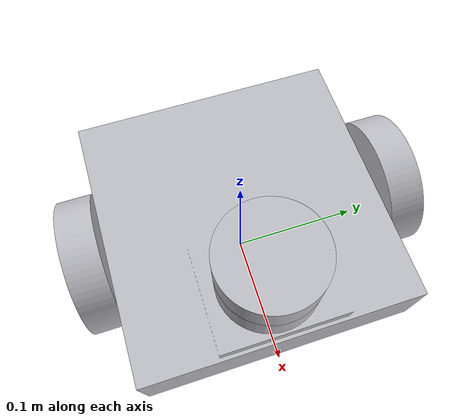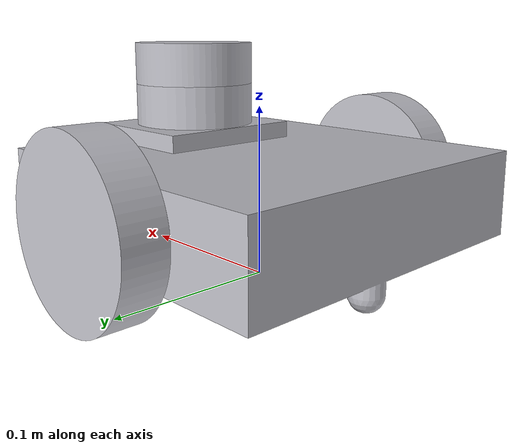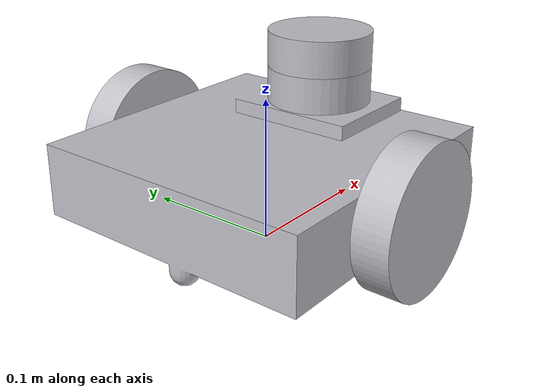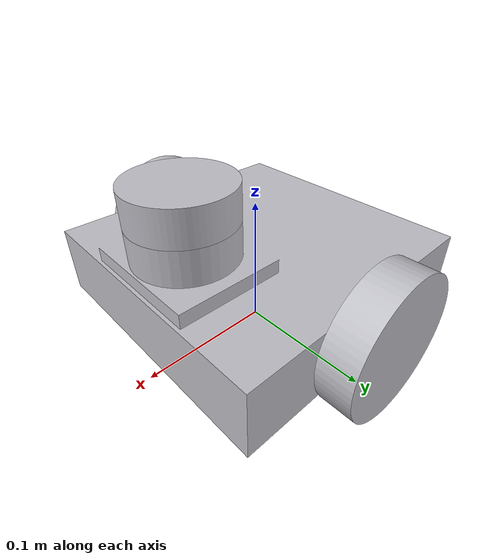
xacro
<?xml version="1.0" ?>
<robot name="myrobot" xmlns:xacro="http://www.ros.org/wiki/xacro">

<xacro:include filename="$(find myrobot_description)/urdf/materials.xacro" />
<xacro:include filename="$(find myrobot_description)/urdf/myrobot.trans" />
<xacro:include filename="$(find myrobot_description)/urdf/myrobot.gazebo" />
<link name="base_link">
  <inertial>
    <origin xyz="0.004653099397029518 -1.6665797136639413e-17 0.052918293473760994" rpy="0 0 0"/>
    <mass value="2.3138752403503777"/>
    <inertia ixx="0.007906" iyy="0.008579" izz="0.014974" ixy="-0.0" iyz="-0.0" ixz="-0.000405"/>
  </inertial>
  <visual>
    <origin xyz="0 0 0" rpy="0 0 0"/>
    <geometry>
      <mesh filename="package://myrobot_description/meshes/base_link.stl" scale="0.001 0.001 0.001"/>
    </geometry>
    <material name="silver"/>
  </visual>
  <collision>
    <origin xyz="0 0 0" rpy="0 0 0"/>
    <geometry>
      <mesh filename="package://myrobot_description/meshes/base_link.stl" scale="0.001 0.001 0.001"/>
    </geometry>
  </collision>
</link>

<link name="right_wheel_1">
  <inertial>
    <origin xyz="-5.790023100122029e-18 -0.012499999999999997 0.0" rpy="0 0 0"/>
    <mass value="0.1826050729899067"/>
    <inertia ixx="0.000124" iyy="0.000228" izz="0.000124" ixy="-0.0" iyz="0.0" ixz="0.0"/>
  </inertial>
  <visual>
    <origin xyz="-0.0 0.1 -0.05" rpy="0 0 0"/>
    <geometry>
      <mesh filename="package://myrobot_description/meshes/right_wheel_1.stl" scale="0.001 0.001 0.001"/>
    </geometry>
    <material name="silver"/>
  </visual>
  <collision>
    <origin xyz="-0.0 0.1 -0.05" rpy="0 0 0"/>
    <geometry>
      <mesh filename="package://myrobot_description/meshes/right_wheel_1.stl" scale="0.001 0.001 0.001"/>
    </geometry>
  </collision>
</link>

<link name="left_wheel_1">
  <inertial>
    <origin xyz="-5.790023100122029e-18 0.012499999999999997 0.0" rpy="0 0 0"/>
    <mass value="0.1826050729899067"/>
    <inertia ixx="0.000124" iyy="0.000228" izz="0.000124" ixy="0.0" iyz="-0.0" ixz="0.0"/>
  </inertial>
  <visual>
    <origin xyz="-0.0 -0.1 -0.05" rpy="0 0 0"/>
    <geometry>
      <mesh filename="package://myrobot_description/meshes/left_wheel_1.stl" scale="0.001 0.001 0.001"/>
    </geometry>
    <material name="silver"/>
  </visual>
  <collision>
    <origin xyz="-0.0 -0.1 -0.05" rpy="0 0 0"/>
    <geometry>
      <mesh filename="package://myrobot_description/meshes/left_wheel_1.stl" scale="0.001 0.001 0.001"/>
    </geometry>
  </collision>
</link>

<link name="lidar_1">
  <inertial>
    <origin xyz="-6.938893903907228e-18 -5.584513020951031e-18 0.012499999999999997" rpy="0 0 0"/>
    <mass value="0.7990326755140278"/>
    <inertia ixx="0.000301" iyy="0.000301" izz="0.000518" ixy="-0.0" iyz="-0.0" ixz="0.0"/>
  </inertial>
  <visual>
    <origin xyz="-0.06 -0.0 -0.11" rpy="0 0 0"/>
    <geometry>
      <mesh filename="package://myrobot_description/meshes/lidar_1.stl" scale="0.001 0.001 0.001"/>
    </geometry>
    <material name="silver"/>
  </visual>
  <collision>
    <origin xyz="-0.06 -0.0 -0.11" rpy="0 0 0"/>
    <geometry>
      <mesh filename="package://myrobot_description/meshes/lidar_1.stl" scale="0.001 0.001 0.001"/>
    </geometry>
  </collision>
</link>

<joint name="right_wheel_joint" type="continuous">
  <origin xyz="0.0 -0.1 0.05" rpy="0 0 0"/>
  <parent link="base_link"/>
  <child link="right_wheel_1"/>
  <axis xyz="0.0 -1.0 0.0"/>
</joint>

<joint name="left_wheel_joint" type="continuous">
  <origin xyz="0.0 0.1 0.05" rpy="0 0 0"/>
  <parent link="base_link"/>
  <child link="left_wheel_1"/>
  <axis xyz="0.0 1.0 0.0"/>
</joint>

<joint name="lidar_joint" type="fixed">
  <origin xyz="0.06 0.0 0.11" rpy="0 0 0"/>
  <parent link="base_link"/>
  <child link="lidar_1"/>
</joint>

</robot>
